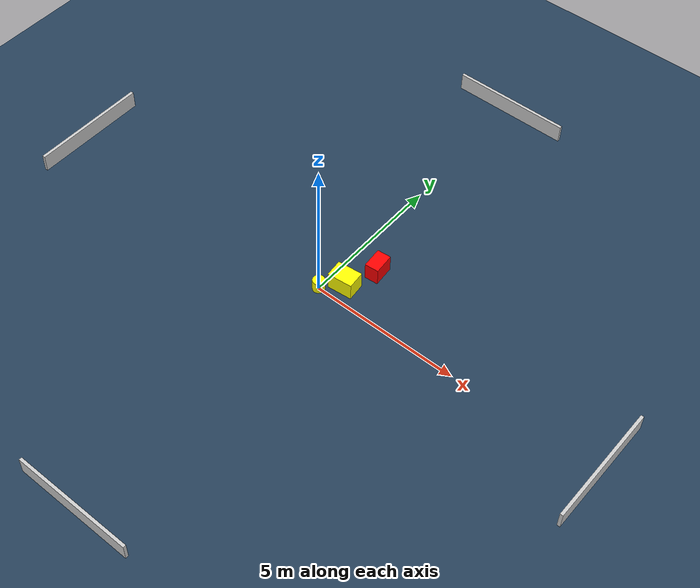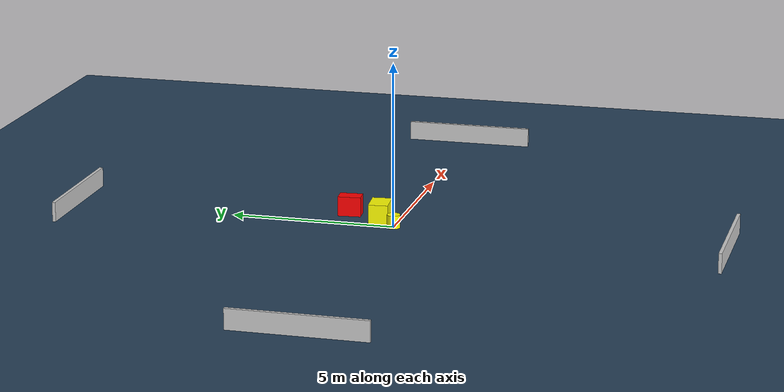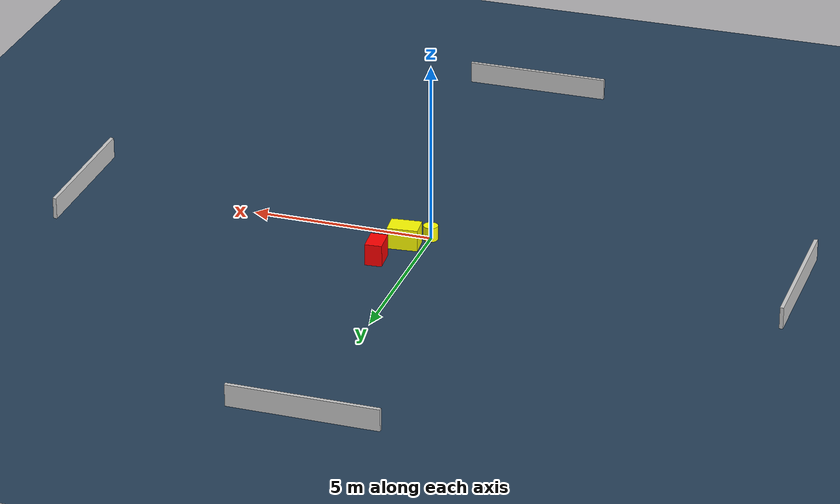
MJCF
<?xml version="1.0" ?>
<mujoco model="generated_environment">
  <option timestep="0.01" integrator="RK4" cone="elliptic"/>
  <default>
    <geom density="1"/>
  </default>
  <asset>
    <texture builtin="gradient" height="3072" name="skybox" rgb1="0.3 0.5 0.7" rgb2="0 0 0" type="skybox" width="512"/>
    <texture builtin="checker" height="300" name="groundplane" rgb1="0.2 0.3 0.4" rgb2="0.1 0.2 0.3" type="2d" width="300"/>
    <material name="groundplane" reflectance="0.2" texrepeat="5 5" texture="groundplane"/>
  </asset>
  <worldbody>
    <light dir="0 0 -1" directional="true" pos="0 0 1.5"/>
    <geom condim="3" friction="0.5 0.005 0.001" material="groundplane" name="floor" pos="0 0 0" size="0 0 0.05" type="plane"/>
    <body name="walls">
      <geom name="wall_1" condim="4" pos="-10.0 0.0 0.3" rgba="0.800000011920929 0.800000011920929 0.800000011920929 1.0" size="0.05 2.0 0.3" type="box"/>
      <geom name="wall_2" condim="4" pos="10.0 0.0 0.3" rgba="0.800000011920929 0.800000011920929 0.800000011920929 1.0" size="0.05 2.0 0.3" type="box"/>
      <geom name="wall_3" condim="4" pos="0.0 -10.0 0.3" rgba="0.800000011920929 0.800000011920929 0.800000011920929 1.0" size="2.0 0.05 0.3" type="box"/>
      <geom name="wall_4" condim="4" pos="0.0 10.0 0.3" rgba="0.800000011920929 0.800000011920929 0.800000011920929 1.0" size="2.0 0.05 0.3" type="box"/>
    </body>
    <body name="robot">
      <joint name="joint_x" type="slide" pos="0 0 0" axis="1 0 0"/>
      <joint name="joint_y" type="slide" pos="0 0 0" axis="0 1 0"/>
      <geom name="robot" type="cylinder" pos="0.0 0.0 0.2" size="0.2 0.2 0.0" mass="5.0" friction="1.0 0.005 0.0001" condim="4" rgba="1.0 1.0 0.0 1.0"/>
    </body>
    <body name="obstacle_1_movable">
      <geom name="obstacle_1_movable" condim="4" pos="0.5507743060221184 0.5600081408212249 0.3" euler="0 0 185.49197163665718" friction="0.0 0.005 0.001" rgba="1.0 1.0 0.0 1.0" size="0.4153365048812957 0.2966595940471987 0.3" type="box" mass="0.1"/>
      <joint type="free"/>
    </body>
    <body name="obstacle_2_static">
      <geom name="obstacle_2_static" condim="4" pos="0.9833051990042888 1.604500782063641 0.3" euler="0 0 184.99630508358408" friction="0.0 0.005 0.001" rgba="1.0 0.0 0.0 1.0" size="0.23015898863838977 0.34793583314974585 0.3" type="box"/>
    </body>
  </worldbody>
  <actuator>
    <motor name="actuator_x" joint="joint_x" gear="1" ctrlrange="-1 1"/>
    <motor name="actuator_y" joint="joint_y" gear="1" ctrlrange="-1 1"/>
  </actuator>
</mujoco>
